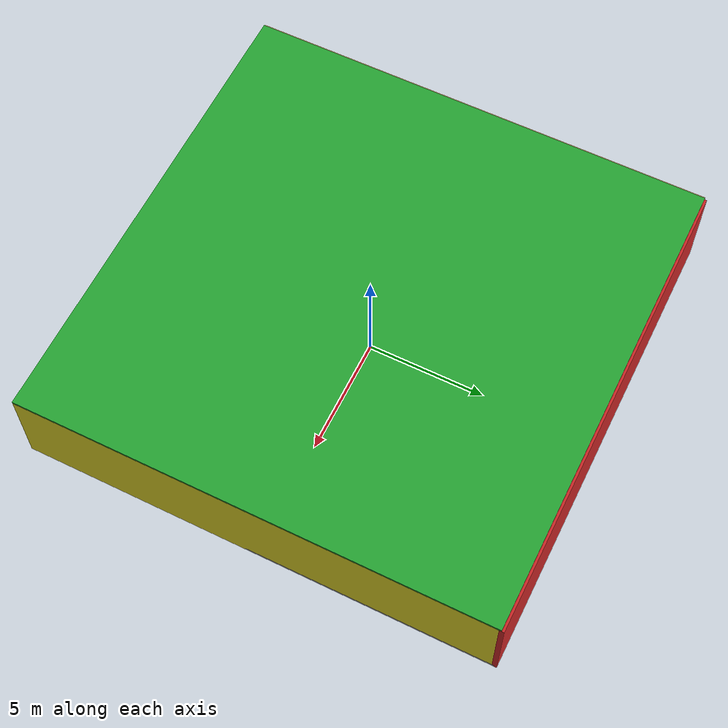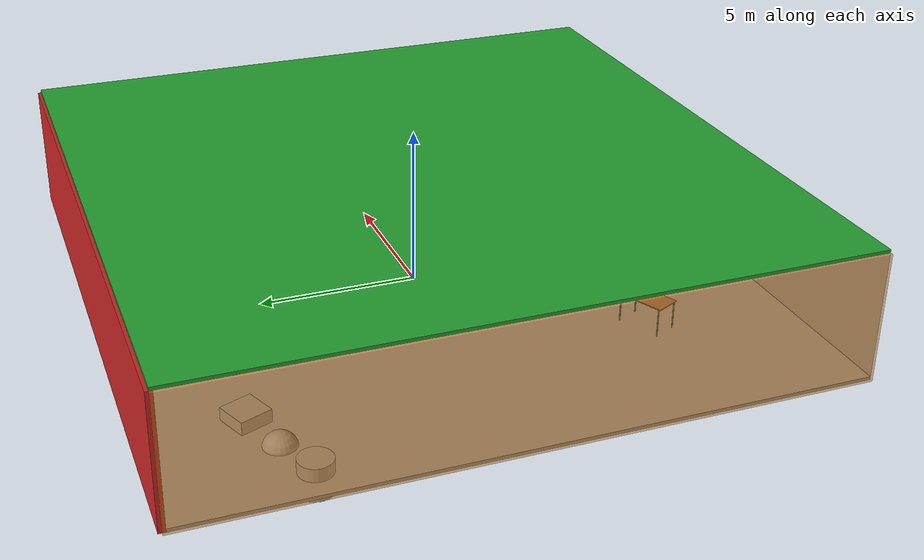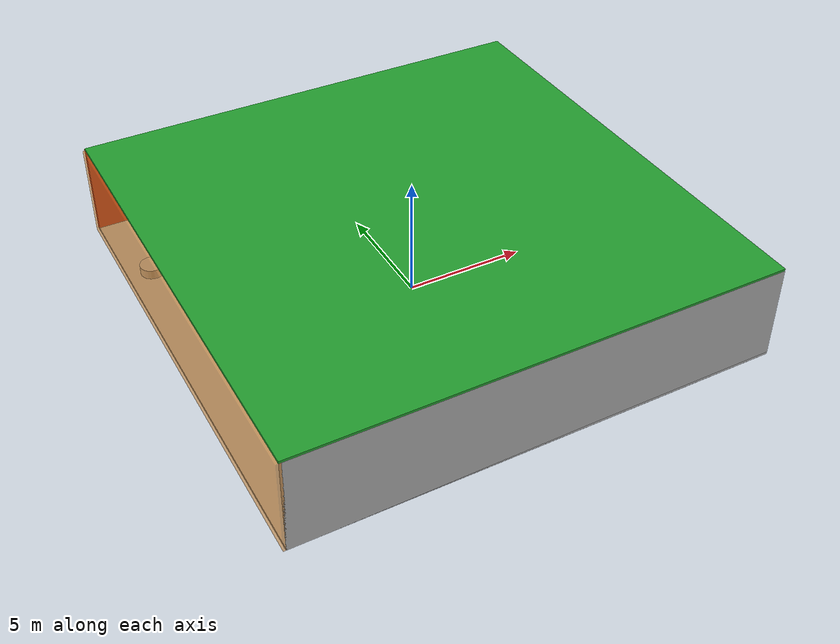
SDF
<sdf version="1.4">
 <world name="default">
  <physics type="ode">
   <max_step_size>0.001</max_step_size>
   <real_time_factor>1</real_time_factor>
   <real_time_update_rate>1000</real_time_update_rate>
   <gravity>0 0 -9.8</gravity>
  </physics>
  <scene><ambient>0.4 0.4 0.4 1</ambient><background>0.7 0.7 0.7 1</background><shadows>1</shadows></scene>
  <model name="Surrounding">
   <static>1</static>
   <link name="Ceiling">
    <collision name="Ceiling_Collision"><geometry><box><size>20 20 0.1</size></box></geometry></collision>
    <visual name="Ceiling_Visual">
     <geometry><box><size>20 20 0.1</size></box></geometry>
     <material>
      <script><uri>file://media/materials/scripts/gazebo.material</uri><name>Gazebo/Green</name></script>
     </material>
    </visual>
    <pose>0 0 4.05 0 0 0</pose>
   </link>
   <link name="Wall_South">
    <collision name="Wall_South_Collision">
     <geometry><box><size>20 0 4</size></box></geometry>
     <pose>0 0 2 0 -0 0</pose>
    </collision>
    <visual name="Wall_South_Visual">
     <pose>0 0 2 0 -0 0</pose>
     <geometry><box><size>20 0 4</size></box></geometry>
     <material>
      <script><uri>file://media/materials/scripts/gazebo.material</uri><name>Gazebo/JointAnchor</name></script>
     </material>
    </visual>
    <velocity_decay><linear>0</linear><angular>0</angular></velocity_decay>
    <pose>0 -10 0 0 -0 0</pose>
   </link>
   <link name="Wall_East">
    <collision name="Wall_21_Collision">
     <geometry><box><size>20 0 4</size></box></geometry>
     <pose>0 0 2 0 -0 0</pose>
    </collision>
    <visual name="Wall_21_Visual">
     <pose>0 0 2 0 -0 0</pose>
     <geometry><box><size>20 0 4</size></box></geometry>
     <material>
      <script><uri>file://media/materials/scripts/gazebo.material</uri><name>Gazebo/Yellow</name></script>
     </material>
    </visual>
    <velocity_decay><linear>0</linear><angular>0</angular></velocity_decay>
    <pose>10 0 0 0 -0 1.5708</pose>
   </link>
   <link name="Wall_North">
    <collision name="Wall_22_Collision">
     <geometry><box><size>20 0.2 4</size></box></geometry>
     <pose>0 0 2 0 -0 0</pose>
    </collision>
    <visual name="Wall_22_Visual">
     <pose>0 0 2 0 -0 0</pose>
     <geometry><box><size>20 0.2 4</size></box></geometry>
     <material>
      <script><uri>file://media/materials/scripts/gazebo.material</uri><name>Gazebo/RedGlow</name></script>
     </material>
    </visual>
    <velocity_decay><linear>0</linear><angular>0</angular></velocity_decay>
    <pose>0 10 0 0 -0 0</pose>
   </link>
   <link name="Wall_West">
    <collision name="Wall_23_Collision">
     <geometry><box><size>20 0.2 4</size></box></geometry>
     <pose>0 0 2 0 -0 0</pose>
    </collision>
    <visual name="Wall_23_Visual">
     <pose>0 0 2 0 -0 0</pose>
     <geometry><box><size>20 0.2 4</size></box></geometry>
     <material>
      <script>
       <uri>file://media/materials/scripts/gazebo.material</uri>
       <name>Gazebo/OrangeTransparent</name>
      </script>
     </material>
    </visual>
    <velocity_decay><linear>0</linear><angular>0</angular></velocity_decay>
    <pose>-10 0 0 0 0 -1.5708</pose>
   </link>
   <link name="Ground_link">
    <collision name="collision">
     <pose>0 0 .05 0 -0 0</pose>
     <geometry><box><size>20 20 0.1</size></box></geometry>
    </collision>
    <visual name="visual">
     <pose>0 0 .05 0 -0 0</pose>
     <geometry><box><size>20 20 0.1</size></box></geometry>
     <material>
      <script><uri>file://media/materials/scripts/gazebo.material</uri><name>Gazebo/LightOff</name></script>
     </material>
    </visual>
   </link>
   <static>1</static>
  </model>
  <spherical_coordinates>
   <surface_model>EARTH_WGS84</surface_model>
   <latitude_deg>0</latitude_deg>
   <longitude_deg>0</longitude_deg>
   <elevation>0</elevation>
   <heading_deg>0</heading_deg>
  </spherical_coordinates>
  <light name="lightball_0" type="diffuse">
   <diffuse>0.8 0.8 0.8 1</diffuse>
   <specular>0.2 0.2 0.2 1</specular>
   <attenuation>
    <range>100</range>
    <constant>0.7</constant>
    <linear>0.01</linear>
    <quadratic>0.001</quadratic>
   </attenuation>
   <direction>-0.5 0.1 -0.9</direction>
   <pose>-8.76803128042 -4.83909969056 1.71193758651 0 0 0</pose>
  </light>
  <light name="lightball_1" type="diffuse">
   <diffuse>0.8 0.8 0.8 1</diffuse>
   <specular>0.2 0.2 0.2 1</specular>
   <attenuation>
    <range>100</range>
    <constant>0.7</constant>
    <linear>0.01</linear>
    <quadratic>0.001</quadratic>
   </attenuation>
   <direction>-0.5 0.1 -0.9</direction>
   <pose>9.92476856235 1.52943021163 3.82470058393 0 0 0</pose>
  </light>
  <light name="lightball_2" type="diffuse">
   <diffuse>0.8 0.8 0.8 1</diffuse>
   <specular>0.2 0.2 0.2 1</specular>
   <attenuation>
    <range>100</range>
    <constant>0.7</constant>
    <linear>0.01</linear>
    <quadratic>0.001</quadratic>
   </attenuation>
   <direction>-0.5 0.1 -0.9</direction>
   <pose>0.949097526696 -5.83609638206 2.68613001773 0 0 0</pose>
  </light>
  <light name="lightball_3" type="diffuse">
   <diffuse>0.8 0.8 0.8 1</diffuse>
   <specular>0.2 0.2 0.2 1</specular>
   <attenuation>
    <range>100</range>
    <constant>0.7</constant>
    <linear>0.01</linear>
    <quadratic>0.001</quadratic>
   </attenuation>
   <direction>-0.5 0.1 -0.9</direction>
   <pose>-3.06695723196 -2.57218608226 2.64146106568 0 0 0</pose>
  </light>
  <light name="lightball_4" type="diffuse">
   <diffuse>0.8 0.8 0.8 1</diffuse>
   <specular>0.2 0.2 0.2 1</specular>
   <attenuation>
    <range>100</range>
    <constant>0.7</constant>
    <linear>0.01</linear>
    <quadratic>0.001</quadratic>
   </attenuation>
   <direction>-0.5 0.1 -0.9</direction>
   <pose>-5.99450896722 -5.98394241667 0.880189934595 0 0 0</pose>
  </light>
  <light name="lightball_5" type="diffuse">
   <diffuse>0.8 0.8 0.8 1</diffuse>
   <specular>0.2 0.2 0.2 1</specular>
   <attenuation>
    <range>100</range>
    <constant>0.7</constant>
    <linear>0.01</linear>
    <quadratic>0.001</quadratic>
   </attenuation>
   <direction>-0.5 0.1 -0.9</direction>
   <pose>5.54269817856 -6.19198207065 0.758008028349 0 0 0</pose>
  </light>
  <light name="lightball_6" type="diffuse">
   <diffuse>0.8 0.8 0.8 1</diffuse>
   <specular>0.2 0.2 0.2 1</specular>
   <attenuation>
    <range>100</range>
    <constant>0.7</constant>
    <linear>0.01</linear>
    <quadratic>0.001</quadratic>
   </attenuation>
   <direction>-0.5 0.1 -0.9</direction>
   <pose>6.53414310705 -4.90662726067 1.3747224219 0 0 0</pose>
  </light>
  <light name="lightball_7" type="diffuse">
   <diffuse>0.8 0.8 0.8 1</diffuse>
   <specular>0.2 0.2 0.2 1</specular>
   <attenuation>
    <range>100</range>
    <constant>0.7</constant>
    <linear>0.01</linear>
    <quadratic>0.001</quadratic>
   </attenuation>
   <direction>-0.5 0.1 -0.9</direction>
   <pose>-9.39653704033 4.02565536341 2.35474668105 0 0 0</pose>
  </light>
  <light name="lightball_8" type="diffuse">
   <diffuse>0.8 0.8 0.8 1</diffuse>
   <specular>0.2 0.2 0.2 1</specular>
   <attenuation>
    <range>100</range>
    <constant>0.7</constant>
    <linear>0.01</linear>
    <quadratic>0.001</quadratic>
   </attenuation>
   <direction>-0.5 0.1 -0.9</direction>
   <pose>0.887219549274 9.94438844529 2.67033113204 0 0 0</pose>
  </light>
  <light name="lightball_9" type="diffuse">
   <diffuse>0.8 0.8 0.8 1</diffuse>
   <specular>0.2 0.2 0.2 1</specular>
   <attenuation>
    <range>100</range>
    <constant>0.7</constant>
    <linear>0.01</linear>
    <quadratic>0.001</quadratic>
   </attenuation>
   <direction>-0.5 0.1 -0.9</direction>
   <pose>4.2530654272 -2.18394499028 3.2344538948 0 0 0</pose>
  </light>
  <include>
   <uri>model://textured_shapes</uri>
   <pose>-7.58762460615 6.43642084563 0 0 0 1.95056390652</pose>
  </include>
  <include><uri>model://table</uri><pose>-5.2221326376 -5.47919845819 0 0 0 0.441797343342</pose></include>
  <include><uri>model://table</uri><pose>5.24073821223 -5.55040874535 0 0 0 0.207968672317</pose></include>
  <include>
   <uri>model://robocup_3Dsim_goal</uri>
   <pose>6.8909794464 1.60246726709 0 0 0 3.00205541313</pose>
  </include>
 </world>
</sdf>

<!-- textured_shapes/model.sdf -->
<sdf version="1.6">
  <model name="textured_shapes">
    <pose>0 0 0.5 0 0 0</pose>
    <link name="box">
      <pose>0 -1.5 0 0 0 0</pose>
      <collision name="collision">
        <geometry>
          <box>
            <size>1 1 1</size>
          </box>
        </geometry>
      </collision>
      <visual name="visual">
        <geometry>
          <box>
            <size>1 1 1</size>
          </box>
        </geometry>
        <material>
          <script>
            <uri>model://../model_source/models/textured_shapes/materials/scripts</uri>
            <uri>model://../model_source/models/textured_shapes/materials/textures</uri>
            <name>TexturedShape/Squares</name>
          </script>
        </material>
      </visual>
    </link>
    <link name="sphere">
      <collision name="collision">
        <geometry>
          <sphere>
            <radius>0.5</radius>
          </sphere>
        </geometry>
      </collision>
      <visual name="visual">
        <geometry>
          <sphere>
            <radius>0.5</radius>
          </sphere>
        </geometry>
        <material>
          <script>
            <uri>model://../model_source/models/textured_shapes/materials/scripts</uri>
            <uri>model://../model_source/models/textured_shapes/materials/textures</uri>
            <name>TexturedShape/Squares</name>
          </script>
        </material>
      </visual>
    </link>
    <link name="cylinder">
      <pose>0 1.5 0 0 0 0</pose>
      <collision name="collision">
        <geometry>
          <cylinder>
            <radius>0.5</radius>
            <length>1</length>
          </cylinder>
        </geometry>
      </collision>
      <visual name="visual">
        <geometry>
          <cylinder>
            <radius>0.5</radius>
            <length>1</length>
          </cylinder>
        </geometry>
        <material>
          <script>
            <uri>model://../model_source/models/textured_shapes/materials/scripts</uri>
            <uri>model://../model_source/models/textured_shapes/materials/textures</uri>
            <name>TexturedShape/Squares</name>
          </script>
        </material>
      </visual>
    </link>
  </model>
</sdf>

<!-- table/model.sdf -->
<sdf version="1.5">
  <model name="table">
    <static>true</static>
    <link name="link">
      <collision name="surface">
        <pose>0 0 1.0 0 0 0</pose>
        <geometry>
          <box>
            <size>1.5 0.8 0.03</size>
          </box>
        </geometry>
        <surface>
          <friction>
            <ode>
              <mu>0.6</mu>
              <mu2>0.6</mu2>
            </ode>
          </friction>
        </surface>
      </collision>
      <visual name="visual1">
        <pose>0 0 1.0 0 0 0</pose>
        <geometry>
          <box>
            <size>1.5 0.8 0.03</size>
          </box>
        </geometry>
        <material>
          <script>
            <uri>model://media/materials/scripts/gazebo.material</uri>
            <name>Gazebo/Wood</name>
          </script>
        </material>
      </visual>
      <collision name="front_left_leg">
        <pose>0.68 0.38 0.5 0 0 0</pose>
        <geometry>
          <cylinder>
            <radius>0.02</radius>
            <length>1.0</length>
          </cylinder>
        </geometry>
      </collision>
      <visual name="front_left_leg">
        <pose>0.68 0.38 0.5 0 0 0</pose>
        <geometry>
          <cylinder>
            <radius>0.02</radius>
            <length>1.0</length>
          </cylinder>
        </geometry>
        <material>
          <script>
            <uri>model://media/materials/scripts/gazebo.material</uri>
            <name>Gazebo/Grey</name>
          </script>
        </material>
      </visual>
      <collision name="front_right_leg">
        <pose>0.68 -0.38 0.5 0 0 0</pose>
        <geometry>
          <cylinder>
            <radius>0.02</radius>
            <length>1.0</length>
          </cylinder>
        </geometry>
      </collision>
      <visual name="front_right_leg">
        <pose>0.68 -0.38 0.5 0 0 0</pose>
        <geometry>
          <cylinder>
            <radius>0.02</radius>
            <length>1.0</length>
          </cylinder>
        </geometry>
        <material>
          <script>
            <uri>model://media/materials/scripts/gazebo.material</uri>
            <name>Gazebo/Grey</name>
          </script>
        </material>
      </visual>
      <collision name="back_right_leg">
        <pose>-0.68 -0.38 0.5 0 0 0</pose>
        <geometry>
          <cylinder>
            <radius>0.02</radius>
            <length>1.0</length>
          </cylinder>
        </geometry>
      </collision>
      <visual name="back_right_leg">
        <pose>-0.68 -0.38 0.5 0 0 0</pose>
        <geometry>
          <cylinder>
            <radius>0.02</radius>
            <length>1.0</length>
          </cylinder>
        </geometry>
        <material>
          <script>
            <uri>model://media/materials/scripts/gazebo.material</uri>
            <name>Gazebo/Grey</name>
          </script>
        </material>
      </visual>
      <collision name="back_left_leg">
        <pose>-0.68 0.38 0.5 0 0 0</pose>
        <geometry>
          <cylinder>
            <radius>0.02</radius>
            <length>1.0</length>
          </cylinder>
        </geometry>
      </collision>
      <visual name="back_left_leg">
        <pose>-0.68 0.38 0.5 0 0 0</pose>
        <geometry>
          <cylinder>
            <radius>0.02</radius>
            <length>1.0</length>
          </cylinder>
        </geometry>
        <material>
          <script>
            <uri>model://media/materials/scripts/gazebo.material</uri>
            <name>Gazebo/Grey</name>
          </script>
        </material>
      </visual>
    </link>
  </model>
</sdf>

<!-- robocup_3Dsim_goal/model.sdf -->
<sdf version="1.5">
  <model name="robocup_3d_goal">
    <static>true</static>
    <link name="left_post">
      <pose>0 1.05 0.45 0 0 0</pose>
      <collision name="collision">
        <geometry>
          <cylinder>
            <radius>0.05</radius>
            <length>0.9</length>
          </cylinder>
        </geometry>
      </collision>
      <visual name="visual">
        <geometry>
          <cylinder>
            <radius>0.05</radius>
            <length>0.9</length>
          </cylinder>
        </geometry>
        <material>
          <script>
            <uri>file://media/materials/scripts/gazebo.material</uri>
            <name>Gazebo/ZincYellow</name>
          </script>
        </material>
      </visual>
    </link>
    <link name="left_support_horiz_lower">
      <pose>0.30 1.05 0.01 0 0 0</pose>
      <collision name="collision">
        <geometry>
          <box>
            <size>0.50 0.02 0.02</size>
          </box>
        </geometry>
      </collision>
      <visual name="visual">
        <geometry>
          <box>
            <size>0.50 0.02 0.02</size>
          </box>
        </geometry>
        <material>
          <script>
            <uri>file://media/materials/scripts/gazebo.material</uri>
            <name>Gazebo/White</name>
          </script>
        </material>
      </visual>
    </link>
    <link name="left_support_horiz_upper">
      <pose>0.30 1.05 0.79 0 0 0</pose>
      <collision name="collision">
        <geometry>
          <box>
            <size>0.50 0.02 0.02</size>
          </box>
        </geometry>
      </collision>
      <visual name="visual">
        <geometry>
          <box>
            <size>0.50 0.02 0.02</size>
          </box>
        </geometry>
        <material>
          <script>
            <uri>file://media/materials/scripts/gazebo.material</uri>
            <name>Gazebo/White</name>
          </script>
        </material>
      </visual>
    </link>
    <link name="left_support_vertical">
      <pose>0.56 1.05 0.4 0 1.5708 0</pose>
      <collision name="collision">
        <geometry>
          <box>
            <size>0.80 0.02 0.02</size>
          </box>
        </geometry>
      </collision>
      <visual name="visual">
        <geometry>
          <box>
            <size>0.80 0.02 0.02</size>
          </box>
        </geometry>
        <material>
          <script>
            <uri>file://media/materials/scripts/gazebo.material</uri>
            <name>Gazebo/White</name>
          </script>
        </material>
      </visual>
    </link>
    <link name="right_support_horiz_lower">
      <pose>0.30 -1.05 0.01 0 0 0</pose>
      <collision name="collision">
        <geometry>
          <box>
            <size>0.50 0.02 0.02</size>
          </box>
        </geometry>
      </collision>
      <visual name="visual">
        <geometry>
          <box>
            <size>0.50 0.02 0.02</size>
          </box>
        </geometry>
        <material>
          <script>
            <uri>file://media/materials/scripts/gazebo.material</uri>
            <name>Gazebo/White</name>
          </script>
        </material>
      </visual>
    </link>
    <link name="right_support_horiz_upper">
      <pose>0.30 -1.05 0.79 0 0 0</pose>
      <collision name="collision">
        <geometry>
          <box>
            <size>0.50 0.02 0.02</size>
          </box>
        </geometry>
      </collision>
      <visual name="visual">
        <geometry>
          <box>
            <size>0.50 0.02 0.02</size>
          </box>
        </geometry>
        <material>
          <script>
            <uri>file://media/materials/scripts/gazebo.material</uri>
            <name>Gazebo/White</name>
          </script>
        </material>
      </visual>
    </link>
    <link name="right_support_vertical">
      <pose>0.56 -1.05 0.4 0 1.5708 0</pose>
      <collision name="collision">
        <geometry>
          <box>
            <size>0.80 0.02 0.02</size>
          </box>
        </geometry>
      </collision>
      <visual name="visual">
        <geometry>
          <box>
            <size>0.80 0.02 0.02</size>
          </box>
        </geometry>
        <material>
          <script>
            <uri>file://media/materials/scripts/gazebo.material</uri>
            <name>Gazebo/White</name>
          </script>
        </material>
      </visual>
    </link>
    <link name="center_support_horiz_lower">
      <pose>0.56 0 0.01 0 1.5708 0</pose>
      <collision name="collision">
        <geometry>
          <box>
            <size>0.02 2.08 0.02</size>
          </box>
        </geometry>
      </collision>
      <visual name="visual">
        <geometry>
          <box>
            <size>0.02 2.08 0.02</size>
          </box>
        </geometry>
        <material>
          <script>
            <uri>file://media/materials/scripts/gazebo.material</uri>
            <name>Gazebo/White</name>
          </script>
        </material>
      </visual>
    </link>
    <link name="center_support_horiz_upper">
      <pose>0.56 0 0.79 0 1.5708 0</pose>
      <collision name="collision">
        <geometry>
          <box>
            <size>0.02 2.08 0.02</size>
          </box>
        </geometry>
      </collision>
      <visual name="visual">
        <geometry>
          <box>
            <size>0.02 2.08 0.02</size>
          </box>
        </geometry>
        <material>
          <script>
            <uri>file://media/materials/scripts/gazebo.material</uri>
            <name>Gazebo/White</name>
          </script>
        </material>
      </visual>
    </link>
    <link name="right_post">
      <pose>0 -1.05 0.45 0 0 0</pose>
      <collision name="collision">
        <geometry>
          <cylinder>
            <radius>0.05</radius>
            <length>0.9</length>
          </cylinder>
        </geometry>
      </collision>
      <visual name="visual">
        <geometry>
          <cylinder>
            <radius>0.05</radius>
            <length>0.9</length>
          </cylinder>
        </geometry>
        <material>
          <script>
            <uri>file://media/materials/scripts/gazebo.material</uri>
            <name>Gazebo/ZincYellow</name>
          </script>
        </material>
      </visual>
    </link>
    <link name="crossbar">
      <pose>0 0 0.85 1.57 1.57 0</pose>
      <collision name="collision">
        <geometry>
          <cylinder>
            <radius>0.05</radius>
            <length>2.0</length>
          </cylinder>
        </geometry>
      </collision>
      <visual name="visual">
        <geometry>
          <cylinder>
            <radius>0.05</radius>
            <length>2.0</length>
          </cylinder>
        </geometry>
        <material>
          <script>
            <uri>file://media/materials/scripts/gazebo.material</uri>
            <name>Gazebo/ZincYellow</name>
          </script>
        </material>
      </visual>
    </link>
    <link name="center_net">
      <pose>0.56 0 0.40 0 0 0</pose>
      <collision name="collision">
        <geometry>
          <box>
            <size>0.01 2.1 0.80</size>
          </box>
        </geometry>
      </collision>
      <visual name="visual">
        <geometry>
          <box>
            <size>0.01 2.1 0.80</size>
          </box>
        </geometry>
        <material>
          <script>
            <uri>model://../model_source/models/robocup09_spl_field/materials/scripts/</uri>
            <uri>model://../model_source/models/robocup09_spl_field/materials/textures/</uri>
            <name>RoboCup/Net</name>
          </script>
        </material>
      </visual>
    </link>
    <link name="left_net">
      <pose>0.30 1.05 0.40 0 0 0</pose>
      <collision name="collision">
        <geometry>
          <box>
            <size>0.50 0.01 0.76</size>
          </box>
        </geometry>
      </collision>
      <visual name="visual">
        <geometry>
          <box>
            <size>0.50 0.01 0.76</size>
          </box>
        </geometry>
        <material>
          <script>
            <uri>model://../model_source/models/robocup09_spl_field/materials/scripts/</uri>
            <uri>model://../model_source/models/robocup09_spl_field/materials/textures/</uri>
            <name>RoboCup/Net</name>
          </script>
        </material>
      </visual>
    </link>
    <link name="right_net">
      <pose>0.30 -1.05 0.40 0 0 0</pose>
      <collision name="collision">
        <geometry>
          <box>
            <size>0.50 0.01 0.76</size>
          </box>
        </geometry>
      </collision>
      <visual name="visual">
        <geometry>
          <box>
            <size>0.50 0.01 0.76</size>
          </box>
        </geometry>
        <material>
          <script>
            <uri>model://../model_source/models/robocup09_spl_field/materials/scripts/</uri>
            <uri>model://../model_source/models/robocup09_spl_field/materials/textures/</uri>
            <name>RoboCup/Net</name>
          </script>
        </material>
      </visual>
    </link>
  </model>
</sdf>
